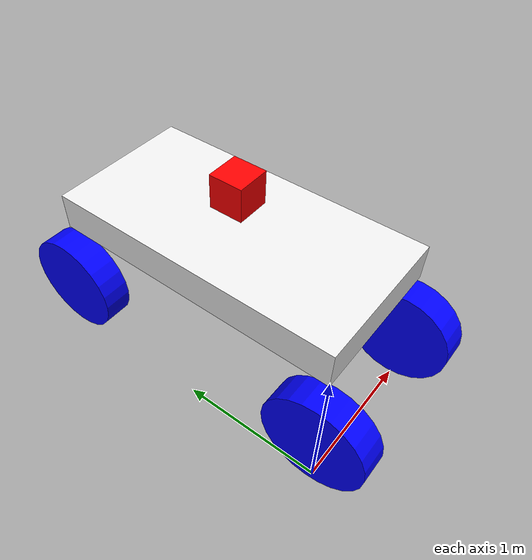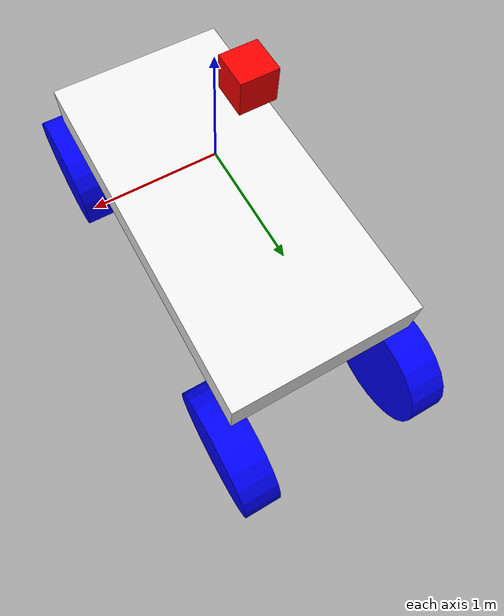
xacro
<?xml version="1.0"?>
<robot name="cartest"
    xmlns:controller="http://playerstage.sourceforge.net/gazebo/xmlschema/#controller"
    xmlns:interface="http://playerstage.sourceforge.net/gazebo/xmlschema/#interface"
    xmlns:sensor="http://playerstage.sourceforge.net/gazebo/xmlschema/#sensor"
    xmlns:xacro="http://ros.org/wiki/xacro">
    <link name="base_footprint">
        <visual>
            <origin xyz="0.5 1 1.1" rpy="0 0 0" />
            <geometry>
                <box size="1  2  0.25" />
            </geometry>
        </visual>
        <collision>
            <origin xyz="0.5 1 1.1" rpy="0 0 0" />
            <geometry>
                <box size="1  2  0.25" />
            </geometry>
        </collision>
        <inertial>
            <mass value="1.0"/>
            <inertia ixx="0.4" ixy="0.0" ixz="0.0" iyy="0.4" iyz="0.0" izz="0.2"/>
        </inertial>
    </link>
    <gazebo reference="base_footprint">
        <material>Gazebo/white</material>
    </gazebo>
    <link name="hokuyo_link">
        <inertial>
            <origin xyz="0.0 0.0 -0.2" rpy="0.0 0.0 0.0"/>
            <mass value="0.2"/>
            <inertia ixx="0.0" ixy="0.0" ixz="0.0" iyy="0.0" iyz="0.0" izz="0.0"/>
        </inertial>
        <visual>
            <origin xyz="0.0 0.0 0.0" rpy="0.0 0.0 0.0"/>
            <geometry>
                <box size="0.2 0.2 0.2"/>
            </geometry>
            <material >
                <color rgba="1.0 0.0 0.0 1.0"/>
            </material>
        </visual>
        <collision>
            <origin xyz="0.0 0.0 0.0" rpy="0.0 0.0 0.0"/>
            <geometry>
                <box size="0.2 0.2 0.2"/>
            </geometry>
        </collision>
    </link>
    <gazebo reference="hokuyo_link">
        <sensor type="ray" name="head_hokuyo_sensor">
            <pose>0.3 0.3 0.3 0 0 0</pose>
            <visualize>true</visualize>
            <update_rate>10</update_rate>
            <ray>
                <scan>
                    <horizontal>
                        <samples>480</samples>
                        <resolution>1</resolution>
                        <min_angle>-3.14</min_angle>
                        <max_angle>3.14</max_angle>
                    </horizontal>
                </scan>
                <range>
                    <min>0.10</min>
                    <max>30.0</max>
                    <resolution>0.01</resolution>
                </range>
                <noise>
                    <type>gaussian</type>
                    <mean>0.0</mean>
                    <stddev>0.01</stddev>
                </noise>
            </ray>
            <plugin name="gazebo_ros_head_hokuyo_controller" filename="libgazebo_ros_laser.so">
                <topicName>scan</topicName>
                <frameName>hokuyo_link</frameName>
            </plugin>
        </sensor>
    </gazebo>
    <joint name="joint_name" type="fixed">
        <origin xyz="0.25 0.8 1.7" rpy="0.0 0.0 0.0"/>
        <parent link="base_footprint"/>
        <child link="hokuyo_link"/>
    </joint>
    <link name="imu_link">
    </link>
    <joint name="base_to_imu" type="fixed">
        <parent link="base_footprint"/>
        <child link="imu_link"/>
        <origin xyz="0 0 0" rpy="0.0 0.0 0.0"/>
    </joint>
    <gazebo reference="imu_link">
        <gravity>true</gravity>
        <sensor name="imu_sensor" type="imu">
            <always_on>true</always_on>
            <update_rate>50</update_rate>
            <visualize>true</visualize>
            <topic>imu</topic>
            <plugin filename="libgazebo_ros_imu_sensor.so" name="imu_plugin">
                <topicName>imu</topicName>
                <bodyName>imu_link</bodyName>
                <updateRateHZ>50.0</updateRateHZ>
                <gaussianNoise>0.0</gaussianNoise>
                <xyzOffset>0 0 0</xyzOffset>
                <rpyOffset>0 0 0</rpyOffset>
                <frameName>imu_link</frameName>
            </plugin>
            <pose>0 0 0 0 0 0</pose>
        </sensor>
    </gazebo>
    <xacro:macro name="wheel" params="linkName xyz rpy">
        <joint name="base_to_${linkName}" type="continuous">
            <origin xyz="${xyz}" rpy="${rpy}" />
            <axis xyz="1 0 0" />
            <parent link="base_footprint"/>
            <child link="${linkName}"/>
            <limit effort="1000000.0" lower="0.0" upper="10000.548" velocity="5000"/>
        </joint>
        <link name="${linkName}">
            <visual>
                <origin xyz="0 0 0" rpy="0 1.57 0" />
                <geometry>
                    <cylinder length="0.2" radius="0.35"/>
                </geometry>
                <material name = "white">
                    <color rgba = "0 0 1 1"/>
                </material>
            </visual>
            <collision name="collision_${linkName}">
                <origin xyz="0 0 0" rpy="0 1.57 0" />
                <geometry>
                    <cylinder length="0.2" radius="0.35"/>
                </geometry>
                <surface>
                    <friction>
                        <ode>
                            <mu>0.5</mu>
                            <mu2>0.5</mu2>
                            <slip1>1.0</slip1>
                            <slip2>1.0</slip2>
                        </ode>
                    </friction>
                </surface>
            </collision>
            <inertial>
                <origin xyz="0 0 0" rpy="0 1.57 0" />
                <mass value="1.0"/>
                <inertia ixx="0.4" ixy="0.0" ixz="0.0" iyy="0.4" iyz="0.0" izz="0.2"/>
            </inertial>
        </link>
        <gazebo reference="${linkName}">
        </gazebo>
        <gazebo reference="${linkName}">
            <material>Gazebo/Orange</material>
        </gazebo>
        <transmission name="tran${linkName}">
            <type>transmission_interface/SimpleTransmission</type>
            <joint name="base_to_${linkName}">
                <hardwareInterface>hardware_interface/VelocityJointInterface</hardwareInterface>
            </joint>
            <actuator name="motor_base_to__${linkName}">
                <hardwareInterface>hardware_interface/VelocityJointInterface</hardwareInterface>
                <mechanicalReduction>1</mechanicalReduction>
            </actuator>
        </transmission>
    </xacro:macro>
    <xacro:wheel linkName="leftup" xyz="0 2 0.5" rpy ="0 0 0"/>
    <xacro:wheel linkName="leftdown" xyz="0 0 0.5" rpy ="0 0 0"/>
    <xacro:wheel linkName="rightup" xyz="1 2 0.5" rpy ="0 0 0"/>
    <xacro:wheel linkName="rightdown" xyz="1 0 0.5" rpy ="0 0 0"/>
    <gazebo>
        <plugin name="gazebo_ros_control" filename="libgazebo_ros_control.so">
            <robotNamespace>/</robotNamespace>
            <robotSimType>gazebo_ros_control/DefaultRobotHWSim</robotSimType>
            <legacyModeNS>true</legacyModeNS>
        </plugin>
    </gazebo>
</robot>
